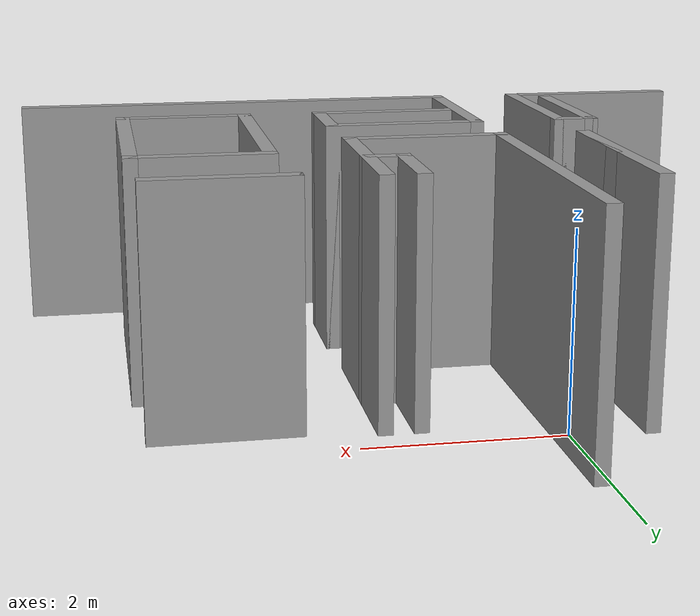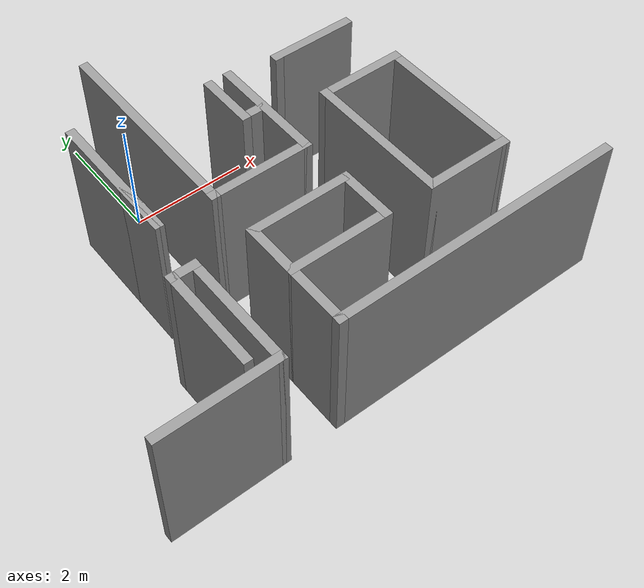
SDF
<sdf version="1.6">
 <model name="maze_final1">
  <link name="Wall_112">
   <pose>0.1 -0.55 0 0 0 -1.5708</pose>
   <visual name="Wall_112_Visual">
    <pose>0 0 1.25 0 -0 0</pose>
    <geometry><box><size>3.5 0.15 2.5</size></box></geometry>
    <material>
     <script><uri>file://media/materials/scripts/gazebo.material</uri><name>Gazebo/Grey</name></script>
     <ambient>1 1 1 1</ambient>
    </material>
    <meta><layer>0</layer></meta>
   </visual>
   <collision name="Wall_112_Collision">
    <pose>0 0 1.25 0 -0 0</pose>
    <geometry><box><size>3.5 0.15 2.5</size></box></geometry>
    <surface>
     <friction>
      <ode><mu>1</mu><mu2>1</mu2><fdir1>0 0 0</fdir1><slip1>0</slip1><slip2>0</slip2></ode>
      <torsional>
       <coefficient>1</coefficient>
       <patch_radius>0</patch_radius>
       <surface_radius>0</surface_radius>
       <use_patch_radius>1</use_patch_radius>
       <ode><slip>0</slip></ode>
      </torsional>
     </friction>
     <bounce><restitution_coefficient>0</restitution_coefficient><threshold>1e+06</threshold></bounce>
     <contact>
      <collide_without_contact>0</collide_without_contact>
      <collide_without_contact_bitmask>1</collide_without_contact_bitmask>
      <collide_bitmask>1</collide_bitmask>
      <ode>
       <soft_cfm>0</soft_cfm>
       <soft_erp>0.2</soft_erp>
       <kp>1e+13</kp>
       <kd>1</kd>
       <max_vel>0.01</max_vel>
       <min_depth>0</min_depth>
      </ode>
      <bullet>
       <split_impulse>1</split_impulse>
       <split_impulse_penetration_threshold>-0.01</split_impulse_penetration_threshold>
       <soft_cfm>0</soft_cfm>
       <soft_erp>0.2</soft_erp>
       <kp>1e+13</kp>
       <kd>1</kd>
      </bullet>
     </contact>
    </surface>
   </collision>
  </link>
  <link name="Wall_113">
   <pose>0.9 -2.225 0 0 -0 0</pose>
   <visual name="Wall_113_Visual">
    <pose>0 0 1.25 0 -0 0</pose>
    <geometry><box><size>1.75 0.15 2.5</size></box></geometry>
    <material>
     <script><uri>file://media/materials/scripts/gazebo.material</uri><name>Gazebo/Grey</name></script>
     <ambient>1 1 1 1</ambient>
    </material>
    <meta><layer>0</layer></meta>
   </visual>
   <collision name="Wall_113_Collision">
    <pose>0 0 1.25 0 -0 0</pose>
    <geometry><box><size>1.75 0.15 2.5</size></box></geometry>
    <surface>
     <friction>
      <ode><mu>1</mu><mu2>1</mu2><fdir1>0 0 0</fdir1><slip1>0</slip1><slip2>0</slip2></ode>
      <torsional>
       <coefficient>1</coefficient>
       <patch_radius>0</patch_radius>
       <surface_radius>0</surface_radius>
       <use_patch_radius>1</use_patch_radius>
       <ode><slip>0</slip></ode>
      </torsional>
     </friction>
     <bounce><restitution_coefficient>0</restitution_coefficient><threshold>1e+06</threshold></bounce>
     <contact>
      <collide_without_contact>0</collide_without_contact>
      <collide_without_contact_bitmask>1</collide_without_contact_bitmask>
      <collide_bitmask>1</collide_bitmask>
      <ode>
       <soft_cfm>0</soft_cfm>
       <soft_erp>0.2</soft_erp>
       <kp>1e+13</kp>
       <kd>1</kd>
       <max_vel>0.01</max_vel>
       <min_depth>0</min_depth>
      </ode>
      <bullet>
       <split_impulse>1</split_impulse>
       <split_impulse_penetration_threshold>-0.01</split_impulse_penetration_threshold>
       <soft_cfm>0</soft_cfm>
       <soft_erp>0.2</soft_erp>
       <kp>1e+13</kp>
       <kd>1</kd>
      </bullet>
     </contact>
    </surface>
   </collision>
  </link>
  <link name="Wall_114">
   <pose>1.7 -1.3 0 0 -0 1.5708</pose>
   <visual name="Wall_114_Visual">
    <pose>0 0 1.25 0 -0 0</pose>
    <geometry><box><size>2 0.15 2.5</size></box></geometry>
    <material>
     <script><uri>file://media/materials/scripts/gazebo.material</uri><name>Gazebo/Grey</name></script>
     <ambient>1 1 1 1</ambient>
    </material>
    <meta><layer>0</layer></meta>
   </visual>
   <collision name="Wall_114_Collision">
    <pose>0 0 1.25 0 -0 0</pose>
    <geometry><box><size>2 0.15 2.5</size></box></geometry>
    <surface>
     <friction>
      <ode><mu>1</mu><mu2>1</mu2><fdir1>0 0 0</fdir1><slip1>0</slip1><slip2>0</slip2></ode>
      <torsional>
       <coefficient>1</coefficient>
       <patch_radius>0</patch_radius>
       <surface_radius>0</surface_radius>
       <use_patch_radius>1</use_patch_radius>
       <ode><slip>0</slip></ode>
      </torsional>
     </friction>
     <bounce><restitution_coefficient>0</restitution_coefficient><threshold>1e+06</threshold></bounce>
     <contact>
      <collide_without_contact>0</collide_without_contact>
      <collide_without_contact_bitmask>1</collide_without_contact_bitmask>
      <collide_bitmask>1</collide_bitmask>
      <ode>
       <soft_cfm>0</soft_cfm>
       <soft_erp>0.2</soft_erp>
       <kp>1e+13</kp>
       <kd>1</kd>
       <max_vel>0.01</max_vel>
       <min_depth>0</min_depth>
      </ode>
      <bullet>
       <split_impulse>1</split_impulse>
       <split_impulse_penetration_threshold>-0.01</split_impulse_penetration_threshold>
       <soft_cfm>0</soft_cfm>
       <soft_erp>0.2</soft_erp>
       <kp>1e+13</kp>
       <kd>1</kd>
      </bullet>
     </contact>
    </surface>
   </collision>
  </link>
  <link name="Wall_116">
   <pose>1.35 -0.8 0 0 0 -1.5708</pose>
   <visual name="Wall_116_Visual">
    <pose>0 0 1.25 0 -0 0</pose>
    <geometry><box><size>1 0.15 2.5</size></box></geometry>
    <material>
     <script><uri>file://media/materials/scripts/gazebo.material</uri><name>Gazebo/Grey</name></script>
     <ambient>1 1 1 1</ambient>
    </material>
    <meta><layer>0</layer></meta>
   </visual>
   <collision name="Wall_116_Collision">
    <pose>0 0 1.25 0 -0 0</pose>
    <geometry><box><size>1 0.15 2.5</size></box></geometry>
    <surface>
     <friction>
      <ode><mu>1</mu><mu2>1</mu2><fdir1>0 0 0</fdir1><slip1>0</slip1><slip2>0</slip2></ode>
      <torsional>
       <coefficient>1</coefficient>
       <patch_radius>0</patch_radius>
       <surface_radius>0</surface_radius>
       <use_patch_radius>1</use_patch_radius>
       <ode><slip>0</slip></ode>
      </torsional>
     </friction>
     <bounce><restitution_coefficient>0</restitution_coefficient><threshold>1e+06</threshold></bounce>
     <contact>
      <collide_without_contact>0</collide_without_contact>
      <collide_without_contact_bitmask>1</collide_without_contact_bitmask>
      <collide_bitmask>1</collide_bitmask>
      <ode>
       <soft_cfm>0</soft_cfm>
       <soft_erp>0.2</soft_erp>
       <kp>1e+13</kp>
       <kd>1</kd>
       <max_vel>0.01</max_vel>
       <min_depth>0</min_depth>
      </ode>
      <bullet>
       <split_impulse>1</split_impulse>
       <split_impulse_penetration_threshold>-0.01</split_impulse_penetration_threshold>
       <soft_cfm>0</soft_cfm>
       <soft_erp>0.2</soft_erp>
       <kp>1e+13</kp>
       <kd>1</kd>
      </bullet>
     </contact>
    </surface>
   </collision>
  </link>
  <link name="Wall_117">
   <pose>1.525 -1.225 0 0 -0 0</pose>
   <visual name="Wall_117_Visual">
    <pose>0 0 1.25 0 -0 0</pose>
    <geometry><box><size>0.5 0.15 2.5</size></box></geometry>
    <material>
     <script><uri>file://media/materials/scripts/gazebo.material</uri><name>Gazebo/Grey</name></script>
     <ambient>1 1 1 1</ambient>
    </material>
    <meta><layer>0</layer></meta>
   </visual>
   <collision name="Wall_117_Collision">
    <pose>0 0 1.25 0 -0 0</pose>
    <geometry><box><size>0.5 0.15 2.5</size></box></geometry>
    <surface>
     <friction>
      <ode><mu>1</mu><mu2>1</mu2><fdir1>0 0 0</fdir1><slip1>0</slip1><slip2>0</slip2></ode>
      <torsional>
       <coefficient>1</coefficient>
       <patch_radius>0</patch_radius>
       <surface_radius>0</surface_radius>
       <use_patch_radius>1</use_patch_radius>
       <ode><slip>0</slip></ode>
      </torsional>
     </friction>
     <bounce><restitution_coefficient>0</restitution_coefficient><threshold>1e+06</threshold></bounce>
     <contact>
      <collide_without_contact>0</collide_without_contact>
      <collide_without_contact_bitmask>1</collide_without_contact_bitmask>
      <collide_bitmask>1</collide_bitmask>
      <ode>
       <soft_cfm>0</soft_cfm>
       <soft_erp>0.2</soft_erp>
       <kp>1e+13</kp>
       <kd>1</kd>
       <max_vel>0.01</max_vel>
       <min_depth>0</min_depth>
      </ode>
      <bullet>
       <split_impulse>1</split_impulse>
       <split_impulse_penetration_threshold>-0.01</split_impulse_penetration_threshold>
       <soft_cfm>0</soft_cfm>
       <soft_erp>0.2</soft_erp>
       <kp>1e+13</kp>
       <kd>1</kd>
      </bullet>
     </contact>
    </surface>
   </collision>
  </link>
  <link name="Wall_135">
   <pose>2.575 -4.925 0 0 -0 3.14159</pose>
   <visual name="Wall_135_Visual">
    <pose>0 0 1.25 0 -0 0</pose>
    <geometry><box><size>5 0.15 2.5</size></box></geometry>
    <material>
     <script><uri>file://media/materials/scripts/gazebo.material</uri><name>Gazebo/Grey</name></script>
     <ambient>1 1 1 1</ambient>
    </material>
    <meta><layer>0</layer></meta>
   </visual>
   <collision name="Wall_135_Collision">
    <pose>0 0 1.25 0 -0 0</pose>
    <geometry><box><size>5 0.15 2.5</size></box></geometry>
    <surface>
     <friction>
      <ode><mu>1</mu><mu2>1</mu2><fdir1>0 0 0</fdir1><slip1>0</slip1><slip2>0</slip2></ode>
      <torsional>
       <coefficient>1</coefficient>
       <patch_radius>0</patch_radius>
       <surface_radius>0</surface_radius>
       <use_patch_radius>1</use_patch_radius>
       <ode><slip>0</slip></ode>
      </torsional>
     </friction>
     <bounce><restitution_coefficient>0</restitution_coefficient><threshold>1e+06</threshold></bounce>
     <contact>
      <collide_without_contact>0</collide_without_contact>
      <collide_without_contact_bitmask>1</collide_without_contact_bitmask>
      <collide_bitmask>1</collide_bitmask>
      <ode>
       <soft_cfm>0</soft_cfm>
       <soft_erp>0.2</soft_erp>
       <kp>1e+13</kp>
       <kd>1</kd>
       <max_vel>0.01</max_vel>
       <min_depth>0</min_depth>
      </ode>
      <bullet>
       <split_impulse>1</split_impulse>
       <split_impulse_penetration_threshold>-0.01</split_impulse_penetration_threshold>
       <soft_cfm>0</soft_cfm>
       <soft_erp>0.2</soft_erp>
       <kp>1e+13</kp>
       <kd>1</kd>
      </bullet>
     </contact>
    </surface>
   </collision>
  </link>
  <link name="Wall_136">
   <pose>0.15 -4 0 0 -0 1.5708</pose>
   <visual name="Wall_136_Visual">
    <pose>0 0 1.25 0 -0 0</pose>
    <geometry><box><size>2 0.15 2.5</size></box></geometry>
    <material>
     <script><uri>file://media/materials/scripts/gazebo.material</uri><name>Gazebo/Grey</name></script>
     <ambient>1 1 1 1</ambient>
    </material>
    <meta><layer>0</layer></meta>
   </visual>
   <collision name="Wall_136_Collision">
    <pose>0 0 1.25 0 -0 0</pose>
    <geometry><box><size>2 0.15 2.5</size></box></geometry>
    <surface>
     <friction>
      <ode><mu>1</mu><mu2>1</mu2><fdir1>0 0 0</fdir1><slip1>0</slip1><slip2>0</slip2></ode>
      <torsional>
       <coefficient>1</coefficient>
       <patch_radius>0</patch_radius>
       <surface_radius>0</surface_radius>
       <use_patch_radius>1</use_patch_radius>
       <ode><slip>0</slip></ode>
      </torsional>
     </friction>
     <bounce><restitution_coefficient>0</restitution_coefficient><threshold>1e+06</threshold></bounce>
     <contact>
      <collide_without_contact>0</collide_without_contact>
      <collide_without_contact_bitmask>1</collide_without_contact_bitmask>
      <collide_bitmask>1</collide_bitmask>
      <ode>
       <soft_cfm>0</soft_cfm>
       <soft_erp>0.2</soft_erp>
       <kp>1e+13</kp>
       <kd>1</kd>
       <max_vel>0.01</max_vel>
       <min_depth>0</min_depth>
      </ode>
      <bullet>
       <split_impulse>1</split_impulse>
       <split_impulse_penetration_threshold>-0.01</split_impulse_penetration_threshold>
       <soft_cfm>0</soft_cfm>
       <soft_erp>0.2</soft_erp>
       <kp>1e+13</kp>
       <kd>1</kd>
      </bullet>
     </contact>
    </surface>
   </collision>
  </link>
  <link name="Wall_137">
   <pose>0.95 -3.075 0 0 -0 0</pose>
   <visual name="Wall_137_Visual">
    <pose>0 0 1.25 0 -0 0</pose>
    <geometry><box><size>1.75 0.15 2.5</size></box></geometry>
    <material>
     <script><uri>file://media/materials/scripts/gazebo.material</uri><name>Gazebo/Grey</name></script>
     <ambient>1 1 1 1</ambient>
    </material>
    <meta><layer>0</layer></meta>
   </visual>
   <collision name="Wall_137_Collision">
    <pose>0 0 1.25 0 -0 0</pose>
    <geometry><box><size>1.75 0.15 2.5</size></box></geometry>
    <surface>
     <friction>
      <ode><mu>1</mu><mu2>1</mu2><fdir1>0 0 0</fdir1><slip1>0</slip1><slip2>0</slip2></ode>
      <torsional>
       <coefficient>1</coefficient>
       <patch_radius>0</patch_radius>
       <surface_radius>0</surface_radius>
       <use_patch_radius>1</use_patch_radius>
       <ode><slip>0</slip></ode>
      </torsional>
     </friction>
     <bounce><restitution_coefficient>0</restitution_coefficient><threshold>1e+06</threshold></bounce>
     <contact>
      <collide_without_contact>0</collide_without_contact>
      <collide_without_contact_bitmask>1</collide_without_contact_bitmask>
      <collide_bitmask>1</collide_bitmask>
      <ode>
       <soft_cfm>0</soft_cfm>
       <soft_erp>0.2</soft_erp>
       <kp>1e+13</kp>
       <kd>1</kd>
       <max_vel>0.01</max_vel>
       <min_depth>0</min_depth>
      </ode>
      <bullet>
       <split_impulse>1</split_impulse>
       <split_impulse_penetration_threshold>-0.01</split_impulse_penetration_threshold>
       <soft_cfm>0</soft_cfm>
       <soft_erp>0.2</soft_erp>
       <kp>1e+13</kp>
       <kd>1</kd>
      </bullet>
     </contact>
    </surface>
   </collision>
  </link>
  <link name="Wall_138">
   <pose>1.75 -3.5 0 0 0 -1.5708</pose>
   <visual name="Wall_138_Visual">
    <pose>0 0 1.25 0 -0 0</pose>
    <geometry><box><size>1 0.15 2.5</size></box></geometry>
    <material>
     <script><uri>file://media/materials/scripts/gazebo.material</uri><name>Gazebo/Grey</name></script>
     <ambient>1 1 1 1</ambient>
    </material>
    <meta><layer>0</layer></meta>
   </visual>
   <collision name="Wall_138_Collision">
    <pose>0 0 1.25 0 -0 0</pose>
    <geometry><box><size>1 0.15 2.5</size></box></geometry>
    <surface>
     <friction>
      <ode><mu>1</mu><mu2>1</mu2><fdir1>0 0 0</fdir1><slip1>0</slip1><slip2>0</slip2></ode>
      <torsional>
       <coefficient>1</coefficient>
       <patch_radius>0</patch_radius>
       <surface_radius>0</surface_radius>
       <use_patch_radius>1</use_patch_radius>
       <ode><slip>0</slip></ode>
      </torsional>
     </friction>
     <bounce><restitution_coefficient>0</restitution_coefficient><threshold>1e+06</threshold></bounce>
     <contact>
      <collide_without_contact>0</collide_without_contact>
      <collide_without_contact_bitmask>1</collide_without_contact_bitmask>
      <collide_bitmask>1</collide_bitmask>
      <ode>
       <soft_cfm>0</soft_cfm>
       <soft_erp>0.2</soft_erp>
       <kp>1e+13</kp>
       <kd>1</kd>
       <max_vel>0.01</max_vel>
       <min_depth>0</min_depth>
      </ode>
      <bullet>
       <split_impulse>1</split_impulse>
       <split_impulse_penetration_threshold>-0.01</split_impulse_penetration_threshold>
       <soft_cfm>0</soft_cfm>
       <soft_erp>0.2</soft_erp>
       <kp>1e+13</kp>
       <kd>1</kd>
      </bullet>
     </contact>
    </surface>
   </collision>
  </link>
  <link name="Wall_139">
   <pose>0.95 -3.925 0 0 -0 3.14159</pose>
   <visual name="Wall_139_Visual">
    <pose>0 0 1.25 0 -0 0</pose>
    <geometry><box><size>1.75 0.15 2.5</size></box></geometry>
    <material>
     <script><uri>file://media/materials/scripts/gazebo.material</uri><name>Gazebo/Grey</name></script>
     <ambient>1 1 1 1</ambient>
    </material>
    <meta><layer>0</layer></meta>
   </visual>
   <collision name="Wall_139_Collision">
    <pose>0 0 1.25 0 -0 0</pose>
    <geometry><box><size>1.75 0.15 2.5</size></box></geometry>
    <surface>
     <friction>
      <ode><mu>1</mu><mu2>1</mu2><fdir1>0 0 0</fdir1><slip1>0</slip1><slip2>0</slip2></ode>
      <torsional>
       <coefficient>1</coefficient>
       <patch_radius>0</patch_radius>
       <surface_radius>0</surface_radius>
       <use_patch_radius>1</use_patch_radius>
       <ode><slip>0</slip></ode>
      </torsional>
     </friction>
     <bounce><restitution_coefficient>0</restitution_coefficient><threshold>1e+06</threshold></bounce>
     <contact>
      <collide_without_contact>0</collide_without_contact>
      <collide_without_contact_bitmask>1</collide_without_contact_bitmask>
      <collide_bitmask>1</collide_bitmask>
      <ode>
       <soft_cfm>0</soft_cfm>
       <soft_erp>0.2</soft_erp>
       <kp>1e+13</kp>
       <kd>1</kd>
       <max_vel>0.01</max_vel>
       <min_depth>0</min_depth>
      </ode>
      <bullet>
       <split_impulse>1</split_impulse>
       <split_impulse_penetration_threshold>-0.01</split_impulse_penetration_threshold>
       <soft_cfm>0</soft_cfm>
       <soft_erp>0.2</soft_erp>
       <kp>1e+13</kp>
       <kd>1</kd>
      </bullet>
     </contact>
    </surface>
   </collision>
  </link>
  <link name="Wall_153">
   <pose>3.18571 -0.482753 0 0 -0 3.14159</pose>
   <visual name="Wall_153_Visual">
    <pose>0 0 1.25 0 -0 0</pose>
    <geometry><box><size>1.5 0.15 2.5</size></box></geometry>
    <material>
     <script><uri>file://media/materials/scripts/gazebo.material</uri><name>Gazebo/Grey</name></script>
     <ambient>1 1 1 1</ambient>
    </material>
    <meta><layer>0</layer></meta>
   </visual>
   <collision name="Wall_153_Collision">
    <pose>0 0 1.25 0 -0 0</pose>
    <geometry><box><size>1.5 0.15 2.5</size></box></geometry>
    <surface>
     <friction>
      <ode><mu>1</mu><mu2>1</mu2><fdir1>0 0 0</fdir1><slip1>0</slip1><slip2>0</slip2></ode>
      <torsional>
       <coefficient>1</coefficient>
       <patch_radius>0</patch_radius>
       <surface_radius>0</surface_radius>
       <use_patch_radius>1</use_patch_radius>
       <ode><slip>0</slip></ode>
      </torsional>
     </friction>
     <bounce><restitution_coefficient>0</restitution_coefficient><threshold>1e+06</threshold></bounce>
     <contact>
      <collide_without_contact>0</collide_without_contact>
      <collide_without_contact_bitmask>1</collide_without_contact_bitmask>
      <collide_bitmask>1</collide_bitmask>
      <ode>
       <soft_cfm>0</soft_cfm>
       <soft_erp>0.2</soft_erp>
       <kp>1e+13</kp>
       <kd>1</kd>
       <max_vel>0.01</max_vel>
       <min_depth>0</min_depth>
      </ode>
      <bullet>
       <split_impulse>1</split_impulse>
       <split_impulse_penetration_threshold>-0.01</split_impulse_penetration_threshold>
       <soft_cfm>0</soft_cfm>
       <soft_erp>0.2</soft_erp>
       <kp>1e+13</kp>
       <kd>1</kd>
      </bullet>
     </contact>
    </surface>
   </collision>
  </link>
  <link name="Wall_154">
   <pose>2.51071 -0.482753 0 0 -0 0</pose>
   <visual name="Wall_154_Visual">
    <pose>0 0 1.25 0 -0 0</pose>
    <geometry><box><size>0.15 0.15 2.5</size></box></geometry>
    <material>
     <script><uri>file://media/materials/scripts/gazebo.material</uri><name>Gazebo/Grey</name></script>
     <ambient>1 1 1 1</ambient>
    </material>
    <meta><layer>0</layer></meta>
   </visual>
   <collision name="Wall_154_Collision">
    <pose>0 0 1.25 0 -0 0</pose>
    <geometry><box><size>0.15 0.15 2.5</size></box></geometry>
    <surface>
     <friction>
      <ode><mu>1</mu><mu2>1</mu2><fdir1>0 0 0</fdir1><slip1>0</slip1><slip2>0</slip2></ode>
      <torsional>
       <coefficient>1</coefficient>
       <patch_radius>0</patch_radius>
       <surface_radius>0</surface_radius>
       <use_patch_radius>1</use_patch_radius>
       <ode><slip>0</slip></ode>
      </torsional>
     </friction>
     <bounce><restitution_coefficient>0</restitution_coefficient><threshold>1e+06</threshold></bounce>
     <contact>
      <collide_without_contact>0</collide_without_contact>
      <collide_without_contact_bitmask>1</collide_without_contact_bitmask>
      <collide_bitmask>1</collide_bitmask>
      <ode>
       <soft_cfm>0</soft_cfm>
       <soft_erp>0.2</soft_erp>
       <kp>1e+13</kp>
       <kd>1</kd>
       <max_vel>0.01</max_vel>
       <min_depth>0</min_depth>
      </ode>
      <bullet>
       <split_impulse>1</split_impulse>
       <split_impulse_penetration_threshold>-0.01</split_impulse_penetration_threshold>
       <soft_cfm>0</soft_cfm>
       <soft_erp>0.2</soft_erp>
       <kp>1e+13</kp>
       <kd>1</kd>
      </bullet>
     </contact>
    </surface>
   </collision>
  </link>
  <link name="Wall_164">
   <pose>3.275 -3.925 0 0 -0 0</pose>
   <visual name="Wall_164_Visual">
    <pose>0 0 1.25 0 -0 0</pose>
    <geometry><box><size>1.5 0.15 2.5</size></box></geometry>
    <material>
     <script><uri>file://media/materials/scripts/gazebo.material</uri><name>Gazebo/Grey</name></script>
     <ambient>1 1 1 1</ambient>
    </material>
    <meta><layer>0</layer></meta>
   </visual>
   <collision name="Wall_164_Collision">
    <pose>0 0 1.25 0 -0 0</pose>
    <geometry><box><size>1.5 0.15 2.5</size></box></geometry>
    <surface>
     <friction>
      <ode><mu>1</mu><mu2>1</mu2><fdir1>0 0 0</fdir1><slip1>0</slip1><slip2>0</slip2></ode>
      <torsional>
       <coefficient>1</coefficient>
       <patch_radius>0</patch_radius>
       <surface_radius>0</surface_radius>
       <use_patch_radius>1</use_patch_radius>
       <ode><slip>0</slip></ode>
      </torsional>
     </friction>
     <bounce><restitution_coefficient>0</restitution_coefficient><threshold>1e+06</threshold></bounce>
     <contact>
      <collide_without_contact>0</collide_without_contact>
      <collide_without_contact_bitmask>1</collide_without_contact_bitmask>
      <collide_bitmask>1</collide_bitmask>
      <ode>
       <soft_cfm>0</soft_cfm>
       <soft_erp>0.2</soft_erp>
       <kp>1e+13</kp>
       <kd>1</kd>
       <max_vel>0.01</max_vel>
       <min_depth>0</min_depth>
      </ode>
      <bullet>
       <split_impulse>1</split_impulse>
       <split_impulse_penetration_threshold>-0.01</split_impulse_penetration_threshold>
       <soft_cfm>0</soft_cfm>
       <soft_erp>0.2</soft_erp>
       <kp>1e+13</kp>
       <kd>1</kd>
      </bullet>
     </contact>
    </surface>
   </collision>
  </link>
  <link name="Wall_165">
   <pose>3.95 -2.75 0 0 -0 1.5708</pose>
   <visual name="Wall_165_Visual">
    <pose>0 0 1.25 0 -0 0</pose>
    <geometry><box><size>2.5 0.15 2.5</size></box></geometry>
    <material>
     <script><uri>file://media/materials/scripts/gazebo.material</uri><name>Gazebo/Grey</name></script>
     <ambient>1 1 1 1</ambient>
    </material>
    <meta><layer>0</layer></meta>
   </visual>
   <collision name="Wall_165_Collision">
    <pose>0 0 1.25 0 -0 0</pose>
    <geometry><box><size>2.5 0.15 2.5</size></box></geometry>
    <surface>
     <friction>
      <ode><mu>1</mu><mu2>1</mu2><fdir1>0 0 0</fdir1><slip1>0</slip1><slip2>0</slip2></ode>
      <torsional>
       <coefficient>1</coefficient>
       <patch_radius>0</patch_radius>
       <surface_radius>0</surface_radius>
       <use_patch_radius>1</use_patch_radius>
       <ode><slip>0</slip></ode>
      </torsional>
     </friction>
     <bounce><restitution_coefficient>0</restitution_coefficient><threshold>1e+06</threshold></bounce>
     <contact>
      <collide_without_contact>0</collide_without_contact>
      <collide_without_contact_bitmask>1</collide_without_contact_bitmask>
      <collide_bitmask>1</collide_bitmask>
      <ode>
       <soft_cfm>0</soft_cfm>
       <soft_erp>0.2</soft_erp>
       <kp>1e+13</kp>
       <kd>1</kd>
       <max_vel>0.01</max_vel>
       <min_depth>0</min_depth>
      </ode>
      <bullet>
       <split_impulse>1</split_impulse>
       <split_impulse_penetration_threshold>-0.01</split_impulse_penetration_threshold>
       <soft_cfm>0</soft_cfm>
       <soft_erp>0.2</soft_erp>
       <kp>1e+13</kp>
       <kd>1</kd>
      </bullet>
     </contact>
    </surface>
   </collision>
  </link>
  <link name="Wall_166">
   <pose>3.275 -1.575 0 0 -0 3.14159</pose>
   <visual name="Wall_166_Visual">
    <pose>0 0 1.25 0 -0 0</pose>
    <geometry><box><size>1.5 0.15 2.5</size></box></geometry>
    <material>
     <script><uri>file://media/materials/scripts/gazebo.material</uri><name>Gazebo/Grey</name></script>
     <ambient>1 1 1 1</ambient>
    </material>
    <meta><layer>0</layer></meta>
   </visual>
   <collision name="Wall_166_Collision">
    <pose>0 0 1.25 0 -0 0</pose>
    <geometry><box><size>1.5 0.15 2.5</size></box></geometry>
    <surface>
     <friction>
      <ode><mu>1</mu><mu2>1</mu2><fdir1>0 0 0</fdir1><slip1>0</slip1><slip2>0</slip2></ode>
      <torsional>
       <coefficient>1</coefficient>
       <patch_radius>0</patch_radius>
       <surface_radius>0</surface_radius>
       <use_patch_radius>1</use_patch_radius>
       <ode><slip>0</slip></ode>
      </torsional>
     </friction>
     <bounce><restitution_coefficient>0</restitution_coefficient><threshold>1e+06</threshold></bounce>
     <contact>
      <collide_without_contact>0</collide_without_contact>
      <collide_without_contact_bitmask>1</collide_without_contact_bitmask>
      <collide_bitmask>1</collide_bitmask>
      <ode>
       <soft_cfm>0</soft_cfm>
       <soft_erp>0.2</soft_erp>
       <kp>1e+13</kp>
       <kd>1</kd>
       <max_vel>0.01</max_vel>
       <min_depth>0</min_depth>
      </ode>
      <bullet>
       <split_impulse>1</split_impulse>
       <split_impulse_penetration_threshold>-0.01</split_impulse_penetration_threshold>
       <soft_cfm>0</soft_cfm>
       <soft_erp>0.2</soft_erp>
       <kp>1e+13</kp>
       <kd>1</kd>
      </bullet>
     </contact>
    </surface>
   </collision>
  </link>
  <link name="Wall_167">
   <pose>2.6 -2.75 0 0 0 -1.5708</pose>
   <visual name="Wall_167_Visual">
    <pose>0 0 1.25 0 -0 0</pose>
    <geometry><box><size>2.5 0.15 2.5</size></box></geometry>
    <material>
     <script><uri>file://media/materials/scripts/gazebo.material</uri><name>Gazebo/Grey</name></script>
     <ambient>1 1 1 1</ambient>
    </material>
    <meta><layer>0</layer></meta>
   </visual>
   <collision name="Wall_167_Collision">
    <pose>0 0 1.25 0 -0 0</pose>
    <geometry><box><size>2.5 0.15 2.5</size></box></geometry>
    <surface>
     <friction>
      <ode><mu>1</mu><mu2>1</mu2><fdir1>0 0 0</fdir1><slip1>0</slip1><slip2>0</slip2></ode>
      <torsional>
       <coefficient>1</coefficient>
       <patch_radius>0</patch_radius>
       <surface_radius>0</surface_radius>
       <use_patch_radius>1</use_patch_radius>
       <ode><slip>0</slip></ode>
      </torsional>
     </friction>
     <bounce><restitution_coefficient>0</restitution_coefficient><threshold>1e+06</threshold></bounce>
     <contact>
      <collide_without_contact>0</collide_without_contact>
      <collide_without_contact_bitmask>1</collide_without_contact_bitmask>
      <collide_bitmask>1</collide_bitmask>
      <ode>
       <soft_cfm>0</soft_cfm>
       <soft_erp>0.2</soft_erp>
       <kp>1e+13</kp>
       <kd>1</kd>
       <max_vel>0.01</max_vel>
       <min_depth>0</min_depth>
      </ode>
      <bullet>
       <split_impulse>1</split_impulse>
       <split_impulse_penetration_threshold>-0.01</split_impulse_penetration_threshold>
       <soft_cfm>0</soft_cfm>
       <soft_erp>0.2</soft_erp>
       <kp>1e+13</kp>
       <kd>1</kd>
      </bullet>
     </contact>
    </surface>
   </collision>
  </link>
  <link name="Wall_22">
   <pose>-0.8 -1.09056 0 0 -0 1.5708</pose>
   <visual name="Wall_22_Visual">
    <pose>0 0 1.25 0 -0 0</pose>
    <geometry><box><size>2.35 0.15 2.5</size></box></geometry>
    <material>
     <script><uri>file://media/materials/scripts/gazebo.material</uri><name>Gazebo/Grey</name></script>
     <ambient>1 1 1 1</ambient>
    </material>
    <meta><layer>0</layer></meta>
   </visual>
   <collision name="Wall_22_Collision">
    <pose>0 0 1.25 0 -0 0</pose>
    <geometry><box><size>2.35 0.15 2.5</size></box></geometry>
    <surface>
     <friction>
      <ode><mu>1</mu><mu2>1</mu2><fdir1>0 0 0</fdir1><slip1>0</slip1><slip2>0</slip2></ode>
      <torsional>
       <coefficient>1</coefficient>
       <patch_radius>0</patch_radius>
       <surface_radius>0</surface_radius>
       <use_patch_radius>1</use_patch_radius>
       <ode><slip>0</slip></ode>
      </torsional>
     </friction>
     <bounce><restitution_coefficient>0</restitution_coefficient><threshold>1e+06</threshold></bounce>
     <contact>
      <collide_without_contact>0</collide_without_contact>
      <collide_without_contact_bitmask>1</collide_without_contact_bitmask>
      <collide_bitmask>1</collide_bitmask>
      <ode>
       <soft_cfm>0</soft_cfm>
       <soft_erp>0.2</soft_erp>
       <kp>1e+13</kp>
       <kd>1</kd>
       <max_vel>0.01</max_vel>
       <min_depth>0</min_depth>
      </ode>
      <bullet>
       <split_impulse>1</split_impulse>
       <split_impulse_penetration_threshold>-0.01</split_impulse_penetration_threshold>
       <soft_cfm>0</soft_cfm>
       <soft_erp>0.2</soft_erp>
       <kp>1e+13</kp>
       <kd>1</kd>
      </bullet>
     </contact>
    </surface>
   </collision>
  </link>
  <link name="Wall_31">
   <pose>-0.8 -1.64056 0 0 0 -1.5708</pose>
   <visual name="Wall_31_Visual">
    <pose>0 0 1.25 0 -0 0</pose>
    <geometry><box><size>1.25 0.15 2.5</size></box></geometry>
    <material>
     <script><uri>file://media/materials/scripts/gazebo.material</uri><name>Gazebo/Grey</name></script>
     <ambient>1 1 1 1</ambient>
    </material>
    <meta><layer>0</layer></meta>
   </visual>
   <collision name="Wall_31_Collision">
    <pose>0 0 1.25 0 -0 0</pose>
    <geometry><box><size>1.25 0.15 2.5</size></box></geometry>
    <surface>
     <friction>
      <ode><mu>1</mu><mu2>1</mu2><fdir1>0 0 0</fdir1><slip1>0</slip1><slip2>0</slip2></ode>
      <torsional>
       <coefficient>1</coefficient>
       <patch_radius>0</patch_radius>
       <surface_radius>0</surface_radius>
       <use_patch_radius>1</use_patch_radius>
       <ode><slip>0</slip></ode>
      </torsional>
     </friction>
     <bounce><restitution_coefficient>0</restitution_coefficient><threshold>1e+06</threshold></bounce>
     <contact>
      <collide_without_contact>0</collide_without_contact>
      <collide_without_contact_bitmask>1</collide_without_contact_bitmask>
      <collide_bitmask>1</collide_bitmask>
      <ode>
       <soft_cfm>0</soft_cfm>
       <soft_erp>0.2</soft_erp>
       <kp>1e+13</kp>
       <kd>1</kd>
       <max_vel>0.01</max_vel>
       <min_depth>0</min_depth>
      </ode>
      <bullet>
       <split_impulse>1</split_impulse>
       <split_impulse_penetration_threshold>-0.01</split_impulse_penetration_threshold>
       <soft_cfm>0</soft_cfm>
       <soft_erp>0.2</soft_erp>
       <kp>1e+13</kp>
       <kd>1</kd>
      </bullet>
     </contact>
    </surface>
   </collision>
  </link>
  <link name="Wall_6">
   <pose>-1.725 -4.925 0 0 -0 0</pose>
   <visual name="Wall_6_Visual">
    <pose>0 0 1.25 0 -0 0</pose>
    <geometry><box><size>2 0.15 2.5</size></box></geometry>
    <material>
     <script><uri>file://media/materials/scripts/gazebo.material</uri><name>Gazebo/Grey</name></script>
     <ambient>1 1 1 1</ambient>
    </material>
    <meta><layer>0</layer></meta>
   </visual>
   <collision name="Wall_6_Collision">
    <pose>0 0 1.25 0 -0 0</pose>
    <geometry><box><size>2 0.15 2.5</size></box></geometry>
    <surface>
     <friction>
      <ode><mu>1</mu><mu2>1</mu2><fdir1>0 0 0</fdir1><slip1>0</slip1><slip2>0</slip2></ode>
      <torsional>
       <coefficient>1</coefficient>
       <patch_radius>0</patch_radius>
       <surface_radius>0</surface_radius>
       <use_patch_radius>1</use_patch_radius>
       <ode><slip>0</slip></ode>
      </torsional>
     </friction>
     <bounce><restitution_coefficient>0</restitution_coefficient><threshold>1e+06</threshold></bounce>
     <contact>
      <collide_without_contact>0</collide_without_contact>
      <collide_without_contact_bitmask>1</collide_without_contact_bitmask>
      <collide_bitmask>1</collide_bitmask>
      <ode>
       <soft_cfm>0</soft_cfm>
       <soft_erp>0.2</soft_erp>
       <kp>1e+13</kp>
       <kd>1</kd>
       <max_vel>0.01</max_vel>
       <min_depth>0</min_depth>
      </ode>
      <bullet>
       <split_impulse>1</split_impulse>
       <split_impulse_penetration_threshold>-0.01</split_impulse_penetration_threshold>
       <soft_cfm>0</soft_cfm>
       <soft_erp>0.2</soft_erp>
       <kp>1e+13</kp>
       <kd>1</kd>
      </bullet>
     </contact>
    </surface>
   </collision>
  </link>
  <link name="Wall_7">
   <pose>-0.8 -4 0 0 -0 1.5708</pose>
   <visual name="Wall_7_Visual">
    <pose>0 0 1.25 0 -0 0</pose>
    <geometry><box><size>2 0.15 2.5</size></box></geometry>
    <material>
     <script><uri>file://media/materials/scripts/gazebo.material</uri><name>Gazebo/Grey</name></script>
     <ambient>1 1 1 1</ambient>
    </material>
    <meta><layer>0</layer></meta>
   </visual>
   <collision name="Wall_7_Collision">
    <pose>0 0 1.25 0 -0 0</pose>
    <geometry><box><size>2 0.15 2.5</size></box></geometry>
    <surface>
     <friction>
      <ode><mu>1</mu><mu2>1</mu2><fdir1>0 0 0</fdir1><slip1>0</slip1><slip2>0</slip2></ode>
      <torsional>
       <coefficient>1</coefficient>
       <patch_radius>0</patch_radius>
       <surface_radius>0</surface_radius>
       <use_patch_radius>1</use_patch_radius>
       <ode><slip>0</slip></ode>
      </torsional>
     </friction>
     <bounce><restitution_coefficient>0</restitution_coefficient><threshold>1e+06</threshold></bounce>
     <contact>
      <collide_without_contact>0</collide_without_contact>
      <collide_without_contact_bitmask>1</collide_without_contact_bitmask>
      <collide_bitmask>1</collide_bitmask>
      <ode>
       <soft_cfm>0</soft_cfm>
       <soft_erp>0.2</soft_erp>
       <kp>1e+13</kp>
       <kd>1</kd>
       <max_vel>0.01</max_vel>
       <min_depth>0</min_depth>
      </ode>
      <bullet>
       <split_impulse>1</split_impulse>
       <split_impulse_penetration_threshold>-0.01</split_impulse_penetration_threshold>
       <soft_cfm>0</soft_cfm>
       <soft_erp>0.2</soft_erp>
       <kp>1e+13</kp>
       <kd>1</kd>
      </bullet>
     </contact>
    </surface>
   </collision>
  </link>
  <link name="Wall_8">
   <pose>-0.975 -3.075 0 0 -0 3.14159</pose>
   <visual name="Wall_8_Visual">
    <pose>0 0 1.25 0 -0 0</pose>
    <geometry><box><size>0.5 0.15 2.5</size></box></geometry>
    <material>
     <script><uri>file://media/materials/scripts/gazebo.material</uri><name>Gazebo/Grey</name></script>
     <ambient>1 1 1 1</ambient>
    </material>
    <meta><layer>0</layer></meta>
   </visual>
   <collision name="Wall_8_Collision">
    <pose>0 0 1.25 0 -0 0</pose>
    <geometry><box><size>0.5 0.15 2.5</size></box></geometry>
    <surface>
     <friction>
      <ode><mu>1</mu><mu2>1</mu2><fdir1>0 0 0</fdir1><slip1>0</slip1><slip2>0</slip2></ode>
      <torsional>
       <coefficient>1</coefficient>
       <patch_radius>0</patch_radius>
       <surface_radius>0</surface_radius>
       <use_patch_radius>1</use_patch_radius>
       <ode><slip>0</slip></ode>
      </torsional>
     </friction>
     <bounce><restitution_coefficient>0</restitution_coefficient><threshold>1e+06</threshold></bounce>
     <contact>
      <collide_without_contact>0</collide_without_contact>
      <collide_without_contact_bitmask>1</collide_without_contact_bitmask>
      <collide_bitmask>1</collide_bitmask>
      <ode>
       <soft_cfm>0</soft_cfm>
       <soft_erp>0.2</soft_erp>
       <kp>1e+13</kp>
       <kd>1</kd>
       <max_vel>0.01</max_vel>
       <min_depth>0</min_depth>
      </ode>
      <bullet>
       <split_impulse>1</split_impulse>
       <split_impulse_penetration_threshold>-0.01</split_impulse_penetration_threshold>
       <soft_cfm>0</soft_cfm>
       <soft_erp>0.2</soft_erp>
       <kp>1e+13</kp>
       <kd>1</kd>
      </bullet>
     </contact>
    </surface>
   </collision>
  </link>
  <link name="Wall_9">
   <pose>-1.15 -3.875 0 0 0 -1.5708</pose>
   <visual name="Wall_9_Visual">
    <pose>0 0 1.25 0 -0 0</pose>
    <geometry><box><size>1.75 0.15 2.5</size></box></geometry>
    <material>
     <script><uri>file://media/materials/scripts/gazebo.material</uri><name>Gazebo/Grey</name></script>
     <ambient>1 1 1 1</ambient>
    </material>
    <meta><layer>0</layer></meta>
   </visual>
   <collision name="Wall_9_Collision">
    <pose>0 0 1.25 0 -0 0</pose>
    <geometry><box><size>1.75 0.15 2.5</size></box></geometry>
    <surface>
     <friction>
      <ode><mu>1</mu><mu2>1</mu2><fdir1>0 0 0</fdir1><slip1>0</slip1><slip2>0</slip2></ode>
      <torsional>
       <coefficient>1</coefficient>
       <patch_radius>0</patch_radius>
       <surface_radius>0</surface_radius>
       <use_patch_radius>1</use_patch_radius>
       <ode><slip>0</slip></ode>
      </torsional>
     </friction>
     <bounce><restitution_coefficient>0</restitution_coefficient><threshold>1e+06</threshold></bounce>
     <contact>
      <collide_without_contact>0</collide_without_contact>
      <collide_without_contact_bitmask>1</collide_without_contact_bitmask>
      <collide_bitmask>1</collide_bitmask>
      <ode>
       <soft_cfm>0</soft_cfm>
       <soft_erp>0.2</soft_erp>
       <kp>1e+13</kp>
       <kd>1</kd>
       <max_vel>0.01</max_vel>
       <min_depth>0</min_depth>
      </ode>
      <bullet>
       <split_impulse>1</split_impulse>
       <split_impulse_penetration_threshold>-0.01</split_impulse_penetration_threshold>
       <soft_cfm>0</soft_cfm>
       <soft_erp>0.2</soft_erp>
       <kp>1e+13</kp>
       <kd>1</kd>
      </bullet>
     </contact>
    </surface>
   </collision>
  </link>
  <static>1</static>
 </model>
</sdf>
